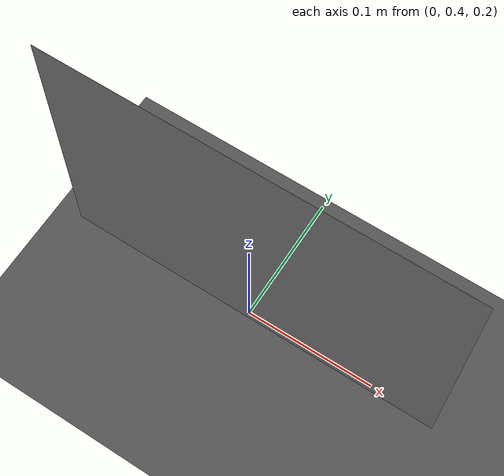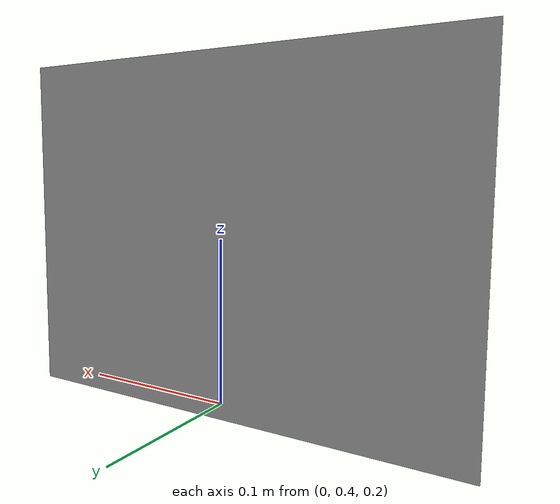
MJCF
<mujoco model="checkerboard_calibration">
  <compiler angle="radian"/>

  <visual>
    <headlight ambient="0.05 0.05 0.05" diffuse="0 0 0" specular="0 0 0"/>
    <global offwidth="1280" offheight="960"/>
  </visual>

  <asset>
    <texture name="checker" type="2d" builtin="checker"
             rgb1="1 1 1" rgb2="0 0 0" width="512" height="512"/>
    <material name="checker_mat" texture="checker" texrepeat="17 17"
              texuniform="true" reflectance="0"/>
    <material name="floor_mat" rgba="0.3 0.3 0.3 1" reflectance="0"/>
  </asset>

  <worldbody>
    <geom name="floor" type="plane" size="2 2 0.1" material="floor_mat"/>

    <!-- Target plane stood vertically at z=0.3, normal pointing -y toward the
         camera (zaxis is the plane normal). size = (half-width, half-height,
         checker square size in meters). -->
    <body name="target" pos="0 0.4 0.3">
      <geom name="target_board" type="plane" size="0.15 0.11 0.03"
            zaxis="0 -1 0" material="checker_mat"/>
    </body>

    <light name="key" pos="0 -0.5 0.45" dir="0 1 -0.15"
           diffuse="1 1 1" specular="0.1 0.1 0.1" castshadow="true"/>

    <!-- Camera looks along +y (-z axis of the camera frame), world-up = +z.
         Webcam-class intrinsics: 1/4" sensor 3.58x2.69 mm, 3.6 mm focal,
         640x480. fovx works out to ~53 deg. -->
    <camera name="cam" mode="fixed" pos="0 -0.5 0.3"
            xyaxes="1 0 0 0 0 1"
            resolution="640 480"
            sensorsize="0.00358 0.00269"
            focal="0.0036 0.0036"/>
  </worldbody>
</mujoco>
